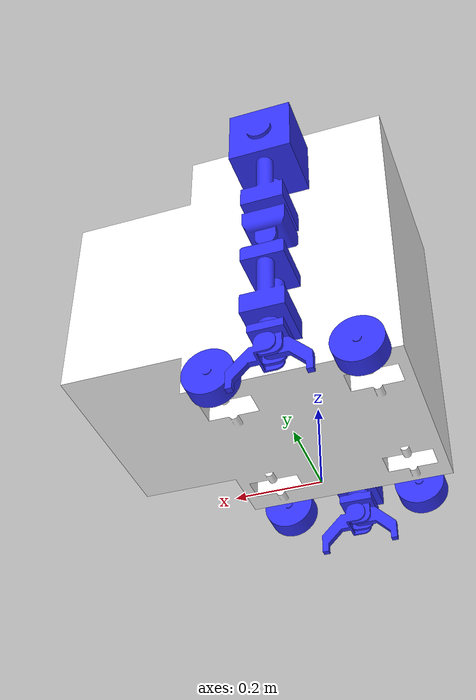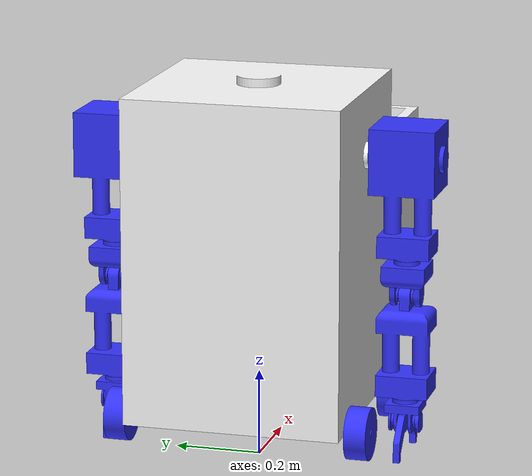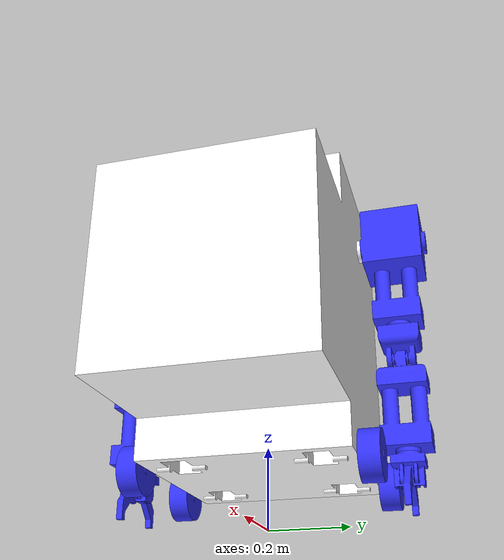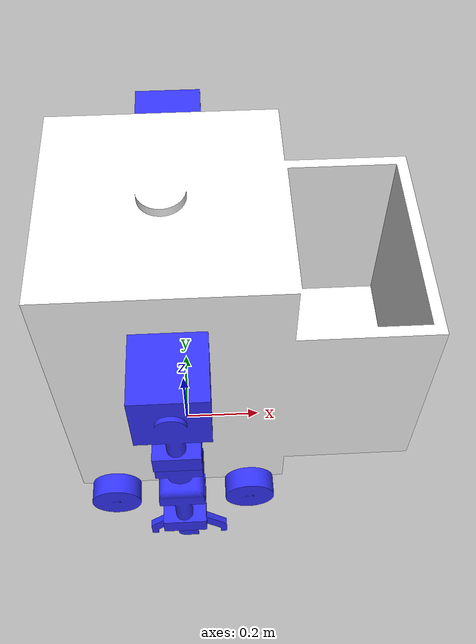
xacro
<?xml version="1.0"?>
<robot xmlns:xacro="http://www.ros.org/wiki/xacro" >

    <xacro:include filename="inertial_macros.xacro" />
    <material name="white">
        <color rgba="1 1 1 1" />
    </material>

    <material name="orange">
        <color rgba="1 0.3 0.1 1"/>
    </material>

    <material name="blue">
        <color rgba="0.2 0.2 1 1"/>
    </material>

    <material name="black">
        <color rgba="0 0 0 1"/>
    </material>

    <material name="red">
        <color rgba="1 0 0 1"/>
    </material>

    <!-- BASE LINK -->

    <link name="base_link">

    </link>
    <joint name="base_footprint_joint" type="fixed">
        <parent link="base_link"/>
        <child link="base_footprint"/>
        <origin xyz="0 0 0" rpy="0 0 0"/>
    </joint>

    <link name="base_footprint">
    </link>

    <link name="chassis">
        <visual>
            <origin xyz="0 0 0" rpy="0 0 0"/>
            <geometry>
                <mesh filename="file:///home/reaicmu/aonrobot_ws/src/articubot_one/description/body.dae" scale = "10 10 10"/>
            </geometry>
            <material name="white"/>
        </visual>
        <collision>
            <origin xyz="0 0 0" rpy="0 0 0"/>
            <geometry>
                <mesh filename="file:///home/reaicmu/aonrobot_ws/src/articubot_one/description/body.dae" scale = "10 10 10"/>
            </geometry>
        </collision>
        <xacro:inertial_box mass="15" x="0.5" y="0.5" z="0.25">
            <origin xyz="0 0 0.35" rpy="0 0 0"/>
        </xacro:inertial_box>
    </link>

    <gazebo reference="chassis">
        <material>Gazebo/White</material>
        <mu1 value="0.1"/>
        <mu2 value="0.1"/>
    </gazebo>

    <joint name="chassis_joint" type="fixed">
        <parent link="base_link"/>
        <child link="chassis"/>
        <origin xyz="0 0 0"/>
    </joint>

    <!-- SHOLDER -->
    <!-- RIGHT SHOLDER -->

    <joint name="right_sholder_joint" type="continuous">
        <parent link="chassis"/>
        <child link="right_sholder"/>
        <origin xyz="0 0.26 0.725" rpy="0 0 0"/>
        <axis xyz="0 1 0"/>
    </joint>

    <link name="right_sholder">
        <visual>
            <geometry>
                <mesh filename="file:///home/reaicmu/aonrobot_ws/src/articubot_one/description/r_sholder.dae" scale = "10 10 10"/>
            </geometry>
            <material name="blue"/>
        </visual>
        <collision>
            <geometry>
                <mesh filename="file:///home/reaicmu/aonrobot_ws/src/articubot_one/description/r_sholder.dae" scale = "10 10 10"/>
            </geometry>
        </collision>
        <xacro:inertial_cylinder mass="0.1" length="0.125" radius="0.075">
            <origin xyz="0 0 0" rpy="0 0 0"/>
        </xacro:inertial_cylinder>
    </link>

    <gazebo reference="right_sholder">
        <material>Gazebo/Black</material>
        <mu1 value="0.1"/>
        <mu2 value="0.1"/>
    </gazebo>

    <!-- LEFT SHOLDER -->

    <joint name="left_sholder_joint" type="continuous">
        <parent link="chassis"/>
        <child link="left_sholder"/>
        <origin xyz="0 -0.26 0.725" rpy="0 0 0"/>
        <axis xyz="0 1 0"/>
    </joint>

    <link name="left_sholder">
        <visual>
            <geometry>
                <mesh filename="file:///home/reaicmu/aonrobot_ws/src/articubot_one/description/l_sholder.dae" scale = "10 10 10"/>
            </geometry>
            <material name="blue"/>
        </visual>
        <collision>
            <geometry>
                <mesh filename="file:///home/reaicmu/aonrobot_ws/src/articubot_one/description/l_sholder.dae" scale = "10 10 10"/>
            </geometry>
        </collision>
        <xacro:inertial_cylinder mass="0.1" length="0.125" radius="0.075">
            <origin xyz="0 0 0" rpy="0 0 0"/>
        </xacro:inertial_cylinder>
    </link>

    <gazebo reference="right_sholder">
        <material>Gazebo/Black</material>
        <mu1 value="0.1"/>
        <mu2 value="0.1"/>
    </gazebo>

    <!-- JOINT1 -->
    <!-- RIGHT JOINT1 -->

    <joint name="right_joint1_joint" type="continuous">
        <parent link="right_sholder"/>
        <child link="right_joint1"/>
        <origin xyz="0 0.085 -0.235" rpy="0 0 0"/>
        <axis xyz="0 0 1"/>
    </joint>

    <link name="right_joint1">
        <visual>
            <geometry>
                <mesh filename="file:///home/reaicmu/aonrobot_ws/src/articubot_one/description/joint1.dae" scale = "10 10 10"/>
            </geometry>
            <material name="blue"/>
        </visual>
        <collision>
            <geometry>
                <mesh filename="file:///home/reaicmu/aonrobot_ws/src/articubot_one/description/joint1.dae" scale = "10 10 10"/>
            </geometry>
        </collision>
        <xacro:inertial_cylinder mass="0.1" length="0.125" radius="0.075">
            <origin xyz="0 0 0" rpy="0 0 0"/>
        </xacro:inertial_cylinder>
    </link>

    <gazebo reference="right_joint1">
        <material>Gazebo/Blue</material>
        <mu1 value="0.1"/>
        <mu2 value="0.1"/>
    </gazebo>

    <!-- LEFT JOINT1 -->

    <joint name="left_joint1_joint" type="continuous">
        <parent link="left_sholder"/>
        <child link="left_joint1"/>
        <origin xyz="0 -0.085 -0.235" rpy="0 0 0"/>
        <axis xyz="0 0 1"/>
    </joint>

    <link name="left_joint1">
        <visual>
            <geometry>
                <mesh filename="file:///home/reaicmu/aonrobot_ws/src/articubot_one/description/joint1.dae" scale = "10 10 10"/>
            </geometry>
            <material name="blue"/>
        </visual>
        <collision>
            <geometry>
                <mesh filename="file:///home/reaicmu/aonrobot_ws/src/articubot_one/description/joint1.dae" scale = "10 10 10"/>
            </geometry>
        </collision>
        <xacro:inertial_cylinder mass="0.1" length="0.125" radius="0.075">
            <origin xyz="0 0 0" rpy="0 0 0"/>
        </xacro:inertial_cylinder>
    </link>

    <gazebo reference="left_joint1">
        <material>Gazebo/Blue</material>
        <mu1 value="0.1"/>
        <mu2 value="0.1"/>
    </gazebo>

    <!-- ARM -->
    <!-- RIGHT ARM -->

    <joint name="right_arm_joint" type="continuous">
        <parent link="right_joint1"/>
        <child link="right_arm"/>
        <origin xyz="0 -0.017 -0.085" rpy="0 0 ${pi}"/>
        <axis xyz="0 1 0"/>
    </joint>

    <link name="right_arm">
        <visual>
            <geometry>
                <mesh filename="file:///home/reaicmu/aonrobot_ws/src/articubot_one/description/arm.dae" scale = "10 10 10"/>
            </geometry>
            <material name="blue"/>
        </visual>
        <collision>
            <geometry>
                <mesh filename="file:///home/reaicmu/aonrobot_ws/src/articubot_one/description/arm.dae" scale = "10 10 10"/>
            </geometry>
        </collision>
        <xacro:inertial_cylinder mass="0.1" length="0.125" radius="0.075">
            <origin xyz="0 0 0" rpy="0 0 0"/>
        </xacro:inertial_cylinder>
    </link>

    <gazebo reference="right_arm">
        <material>Gazebo/Black</material>
        <mu1 value="0.1"/>
        <mu2 value="0.1"/>
    </gazebo>

    <!-- LEFT ARM -->

    <joint name="left_arm_joint" type="continuous">
        <parent link="left_joint1"/>
        <child link="left_arm"/>
        <origin xyz="0 0.017 -0.085" rpy="0 0 0"/>
        <axis xyz="0 1 0"/>
    </joint>

    <link name="left_arm">
        <visual>
            <geometry>
                <mesh filename="file:///home/reaicmu/aonrobot_ws/src/articubot_one/description/arm.dae" scale = "10 10 10"/>
            </geometry>
            <material name="blue"/>
        </visual>
        <collision>
            <geometry>
                <mesh filename="file:///home/reaicmu/aonrobot_ws/src/articubot_one/description/arm.dae" scale = "10 10 10"/>
            </geometry>
        </collision>
        <xacro:inertial_cylinder mass="0.1" length="0.125" radius="0.075">
            <origin xyz="0 0 0" rpy="0 0 0"/>
        </xacro:inertial_cylinder>
    </link>

    <gazebo reference="left_arm">
        <material>Gazebo/Black</material>
        <mu1 value="0.1"/>
        <mu2 value="0.1"/>
    </gazebo>

    <!-- JOINT2 -->
    <!-- RIGHT JOINT2 -->

    <joint name="right_joint2_joint" type="continuous">
        <parent link="right_arm"/>
        <child link="right_joint2"/>
        <origin xyz="0 -0.017 -0.24" rpy="0 0 0"/>
        <axis xyz="0 0 1"/>
    </joint>

    <link name="right_joint2">
        <visual>
            <geometry>
                <mesh filename="file:///home/reaicmu/aonrobot_ws/src/articubot_one/description/joint2.dae" scale = "10 10 10"/>
            </geometry>
            <material name="blue"/>
        </visual>
        <collision>
            <geometry>
                <mesh filename="file:///home/reaicmu/aonrobot_ws/src/articubot_one/description/joint2.dae" scale = "10 10 10"/>
            </geometry>
        </collision>
        <xacro:inertial_cylinder mass="0.1" length="0.125" radius="0.075">
            <origin xyz="0 0 0" rpy="0 0 0"/>
        </xacro:inertial_cylinder>
    </link>

    <gazebo reference="right_joint2">
        <material>Gazebo/Blue</material>
        <mu1 value="0.1"/>
        <mu2 value="0.1"/>
    </gazebo>

    <!-- LEFT JOINT2 -->

    <joint name="left_joint2_joint" type="continuous">
        <parent link="left_arm"/>
        <child link="left_joint2"/>
        <origin xyz="0 -0.017 -0.24" rpy="0 0 0"/>
        <axis xyz="0 0 1"/>
    </joint>

    <link name="left_joint2">
        <visual>
            <geometry>
                <mesh filename="file:///home/reaicmu/aonrobot_ws/src/articubot_one/description/joint2.dae" scale = "10 10 10"/>
            </geometry>
            <material name="blue"/>
        </visual>
        <collision>
            <geometry>
                <mesh filename="file:///home/reaicmu/aonrobot_ws/src/articubot_one/description/joint2.dae" scale = "10 10 10"/>
            </geometry>
        </collision>
        <xacro:inertial_cylinder mass="0.1" length="0.125" radius="0.075">
            <origin xyz="0 0 0" rpy="0 0 0"/>
        </xacro:inertial_cylinder>
    </link>

    <gazebo reference="left_joint2">
        <material>Gazebo/Blue</material>
        <mu1 value="0.1"/>
        <mu2 value="0.1"/>
    </gazebo>

    <!-- GRIP1 -->
    <!-- RIGHT GRIP1 -->

    <joint name="right_grip1_joint" type="continuous">
        <parent link="right_joint2"/>
        <child link="right_grip1"/>
        <origin xyz="0 0.01 -0.055" rpy="0 ${pi/2} ${pi}"/>
        <axis xyz="0 1 0"/>
    </joint>

    <link name="right_grip1">
        <visual>
            <geometry>
                <mesh filename="file:///home/reaicmu/aonrobot_ws/src/articubot_one/description/grip1.dae" scale = "10 10 10"/>
            </geometry>
            <material name="blue"/>
        </visual>
        <collision>
            <geometry>
                <mesh filename="file:///home/reaicmu/aonrobot_ws/src/articubot_one/description/grip1.dae" scale = "10 10 10"/>
            </geometry>
        </collision>
        <xacro:inertial_cylinder mass="0.1" length="0.125" radius="0.075">
            <origin xyz="0 0 0" rpy="0 0 0"/>
        </xacro:inertial_cylinder>
    </link>

    <gazebo reference="right_grip1">
        <material>Gazebo/Red</material>
        <mu1 value="0.1"/>
        <mu2 value="0.1"/>
    </gazebo>

    <!-- LEFT GRIP1 -->

    <joint name="left_grip1_joint" type="continuous">
        <parent link="left_joint2"/>
        <child link="left_grip1"/>
        <origin xyz="0 -0.01 -0.055" rpy="0 ${pi/2} 0"/>
        <axis xyz="0 1 0"/>
    </joint>

    <link name="left_grip1">
        <visual>
            <geometry>
                <mesh filename="file:///home/reaicmu/aonrobot_ws/src/articubot_one/description/grip1.dae" scale = "10 10 10"/>
            </geometry>
            <material name="blue"/>
        </visual>
        <collision>
            <geometry>
                <mesh filename="file:///home/reaicmu/aonrobot_ws/src/articubot_one/description/grip1.dae" scale = "10 10 10"/>
            </geometry>
        </collision>
        <xacro:inertial_cylinder mass="0.1" length="0.125" radius="0.075">
            <origin xyz="0 0 0" rpy="0 0 0"/>
        </xacro:inertial_cylinder>
    </link>

    <gazebo reference="left_grip1">
        <material>Gazebo/Red</material>
        <mu1 value="0.1"/>
        <mu2 value="0.1"/>
    </gazebo>

    <!-- GRIP2 -->
    <!-- RIGHT GRIP2 -->

    <joint name="right_grip2_joint" type="continuous">
        <parent link="right_joint2"/>
        <child link="right_grip2"/>
        <origin xyz="0 -0.025 -0.055" rpy="0 -${pi/2} ${pi}"/>
        <axis xyz="0 1 0"/>
    </joint>

    <link name="right_grip2">
        <visual>
            <geometry>
                <mesh filename="file:///home/reaicmu/aonrobot_ws/src/articubot_one/description/grip2.dae" scale = "10 10 10"/>
            </geometry>
            <material name="blue"/>
        </visual>
        <collision>
            <geometry>
                <mesh filename="file:///home/reaicmu/aonrobot_ws/src/articubot_one/description/grip2.dae" scale = "10 10 10"/>
            </geometry>
        </collision>
        <xacro:inertial_cylinder mass="0.1" length="0.125" radius="0.075">
            <origin xyz="0 0 0" rpy="0 0 0"/>
        </xacro:inertial_cylinder>
    </link>

    <gazebo reference="right_grip2">
        <material>Gazebo/Red</material>
        <mu1 value="0.1"/>
        <mu2 value="0.1"/>
    </gazebo>

    <!-- LEFT GRIP2 -->

    <joint name="left_grip2_joint" type="continuous">
        <parent link="left_joint2"/>
        <child link="left_grip2"/>
        <origin xyz="0 0.025 -0.055" rpy="0 -${pi/2} 0"/>
        <axis xyz="0 1 0"/>
    </joint>

    <link name="left_grip2">
        <visual>
            <geometry>
                <mesh filename="file:///home/reaicmu/aonrobot_ws/src/articubot_one/description/grip2.dae" scale = "10 10 10"/>
            </geometry>
            <material name="blue"/>
        </visual>
        <collision>
            <geometry>
                <mesh filename="file:///home/reaicmu/aonrobot_ws/src/articubot_one/description/grip2.dae" scale = "10 10 10"/>
            </geometry>
        </collision>
        <xacro:inertial_cylinder mass="0.1" length="0.125" radius="0.075">
            <origin xyz="0 0 0" rpy="0 0 0"/>
        </xacro:inertial_cylinder>
    </link>

    <gazebo reference="left_grip2">
        <material>Gazebo/Red</material>
        <mu1 value="0.1"/>
        <mu2 value="0.1"/>
    </gazebo>

    <!-- WHEEL -->
    <!-- RIGHT BACK WHEEL -->

    <joint name="right_back_wheel_joint" type="continuous">
        <parent link="base_link"/>
        <child link="right_back_wheel"/>
        <origin xyz="0.158 0.28 0.126" rpy="0 0 0"/>
        <axis xyz="0 1 0"/>
    </joint>

    <link name="right_back_wheel">
        <visual>
            <geometry>
                <mesh filename="file:///home/reaicmu/aonrobot_ws/src/articubot_one/description/wheel.dae" scale = "10 10 10"/>
            </geometry>
            <material name="blue"/>
        </visual>
        <collision>
            <geometry>
                <mesh filename="file:///home/reaicmu/aonrobot_ws/src/articubot_one/description/wheel.dae" scale = "10 10 10"/>
            </geometry>
        </collision>
        <xacro:inertial_cylinder mass="0.15" length="0.125" radius="0.075">
            <origin xyz="0 0 0" rpy="0 0 0"/>
        </xacro:inertial_cylinder>
    </link>

    <gazebo reference="right_back_wheel">
        <material>Gazebo/Black</material>
        <mu1 value="0.1"/>
        <mu2 value="0.1"/>
    </gazebo>

    <!-- RIGHT FRONT WHEEL -->

    <joint name="right_front_wheel_joint" type="continuous">
        <parent link="base_link"/>
        <child link="right_front_wheel"/>
        <origin xyz="-0.172 0.28 0.126" rpy="0 0 0"/>
        <axis xyz="0 1 0"/>
    </joint>

    <link name="right_front_wheel">
        <visual>
            <geometry>
                <mesh filename="file:///home/reaicmu/aonrobot_ws/src/articubot_one/description/wheel.dae" scale = "10 10 10"/>
            </geometry>
            <material name="blue"/>
        </visual>
        <collision>
            <geometry>
                <mesh filename="file:///home/reaicmu/aonrobot_ws/src/articubot_one/description/wheel.dae" scale = "10 10 10"/>
            </geometry>
        </collision>
        <xacro:inertial_cylinder mass="0.15" length="0.125" radius="0.075">
            <origin xyz="0 0 0" rpy="0 0 0"/>
        </xacro:inertial_cylinder>
    </link>

    <gazebo reference="right_front_wheel">
        <material>Gazebo/Black</material>
        <mu1 value="0.1"/>
        <mu2 value="0.1"/>
    </gazebo>

    <!-- LEFT BACK WHEEL -->

    <joint name="left_back_wheel_joint" type="continuous">
        <parent link="base_link"/>
        <child link="left_back_wheel"/>
        <origin xyz="0.158 -0.28 0.126" rpy="0 0 0"/>
        <axis xyz="0 1 0"/>
    </joint>

    <link name="left_back_wheel">
        <visual>
            <geometry>
                <mesh filename="file:///home/reaicmu/aonrobot_ws/src/articubot_one/description/wheel.dae" scale = "10 10 10"/>
            </geometry>
            <material name="blue"/>
        </visual>
        <collision>
            <geometry>
                <mesh filename="file:///home/reaicmu/aonrobot_ws/src/articubot_one/description/wheel.dae" scale = "10 10 10"/>
            </geometry>
        </collision>
        <xacro:inertial_cylinder mass="0.1" length="0.125" radius="0.075">
            <origin xyz="0 0 0" rpy="0 0 0"/>
        </xacro:inertial_cylinder>
    </link>

    <gazebo reference="left_back_wheel">
        <material>Gazebo/Black</material>
        <mu1 value="0.1"/>
        <mu2 value="0.1"/>
    </gazebo>

    <!-- LEFT FRONT WHEEL -->

    <joint name="left_front_wheel_joint" type="continuous">
        <parent link="base_link"/>
        <child link="left_front_wheel"/>
        <origin xyz="-0.172 -0.28 0.126" rpy="0 0 0"/>
        <axis xyz="0 1 0"/>
    </joint>

    <link name="left_front_wheel">
        <visual>
            <geometry>
                <mesh filename="file:///home/reaicmu/aonrobot_ws/src/articubot_one/description/wheel.dae" scale = "10 10 10"/>
            </geometry>
            <material name="blue"/>
        </visual>
        <collision>
            <geometry>
                <mesh filename="file:///home/reaicmu/aonrobot_ws/src/articubot_one/description/wheel.dae" scale = "10 10 10"/>
            </geometry>
        </collision>
        <xacro:inertial_cylinder mass="0.1" length="0.125" radius="0.075">
            <origin xyz="0 0 0" rpy="0 0 0"/>
        </xacro:inertial_cylinder>
    </link>

    <gazebo reference="left_front_wheel">
        <material>Gazebo/Black</material>
        <mu1 value="0.1"/>
        <mu2 value="0.1"/>
    </gazebo>

</robot>
